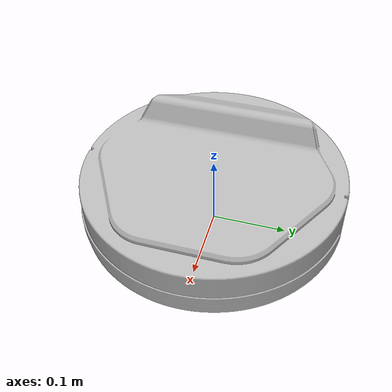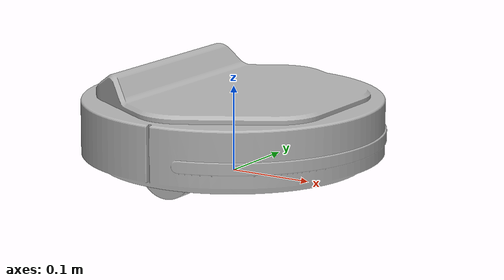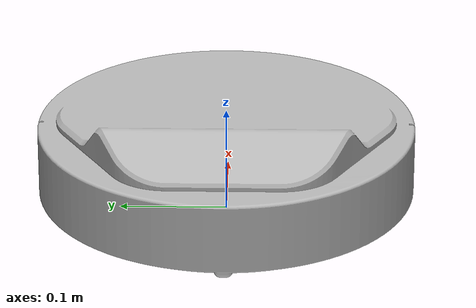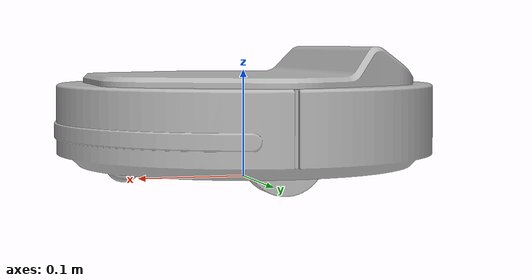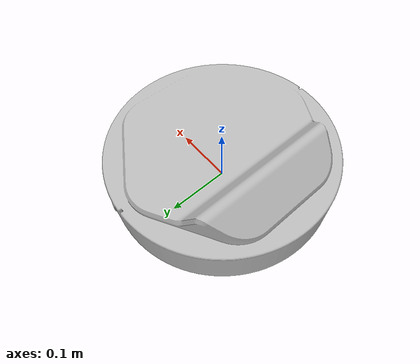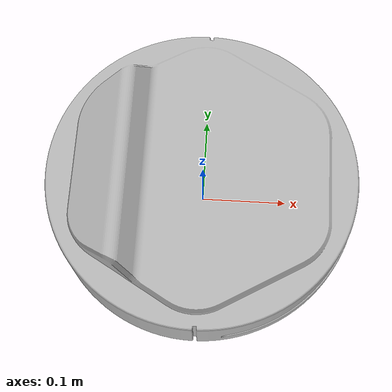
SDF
<?xml version="1.0" ?>
<sdf version="1.5">
  <model name="kobuki">

    <link name="base">
      <inertial>
        <pose>0.001453 -0.000453 0.03 0 0 0</pose>
        <inertia>
          <ixx>0.019995</ixx>
          <ixy>0.0</ixy>
          <ixz>0.0</ixz>
          <iyy>0.019995</iyy>
          <iyz>0.0</iyz>
          <izz>0.03675</izz>
        </inertia>
        <mass>2.4000</mass>
      </inertial>
      <collision name="base_collision">
        <pose>0 0 0.047800 0 0 0</pose>
        <geometry>
          <cylinder>
            <radius>0.016495</radius>
            <length>0.061163</length>
          </cylinder>
        </geometry>
      </collision>
      <visual name="base_visual">
        <pose>0 0 0.06 0 0 0</pose>
        <geometry>
          <mesh>
            <uri>model://kobuki/meshes/main_body.dae</uri>
          </mesh>
        </geometry>
      </visual>

      <collision name="front_wheel_collision">
        <pose>0.115 0 0.017000 0 1.570700 1.570700</pose>
        <geometry>
          <cylinder>
            <radius>0.017</radius>
            <length>0.0176</length>
          </cylinder>
        </geometry>
        <surface>
          <friction>
            <ode>
              <mu>0</mu>
              <mu2>0</mu2>
              <fdir1>0 0 0</fdir1>
              <slip1>0</slip1>
              <slip2>0</slip2>
            </ode>
          </friction>
        </surface>
      </collision>

      <collision name="rear_wheel_collision">
        <pose>-0.138 0 0.017 0 1.5707 1.5707</pose>
        <geometry>
          <cylinder>
            <radius>0.017</radius>
            <length>0.0176</length>
          </cylinder>
        </geometry>
        <surface>
          <friction>
            <ode>
              <mu>0</mu>
              <mu2>0</mu2>
              <fdir1>0 0 0</fdir1>
              <slip1>0</slip1>
              <slip2>0</slip2>
            </ode>
          </friction>
        </surface>
      </collision>

      <sensor name="left_cliff_sensor" type="ray">
        <pose>0.070000 0.140000 0.027000 0 1.570790 0</pose>
        <ray>
          <scan>
            <horizontal>
              <samples>1</samples>
              <resolution>1.000000</resolution>
              <min_angle>0</min_angle>
              <max_angle>0</max_angle>
            </horizontal>
          </scan>
          <range>
            <min>0.010000</min>
            <max>0.040000</max>
            <resolution>0.100000</resolution>
          </range>
        </ray>
      </sensor>
      <sensor name="leftfront_cliff_sensor" type="ray">
        <pose>0.150000 0.040000 0.027000 0 1.570790 0</pose>
        <ray>
          <scan>
            <horizontal>
              <samples>1</samples>
              <resolution>1.000000</resolution>
              <min_angle>0</min_angle>
              <max_angle>0</max_angle>
            </horizontal>
          </scan>
          <range>
            <min>0.010000</min>
            <max>0.040000</max>
            <resolution>0.100000</resolution>
          </range>
        </ray>
      </sensor>
      <sensor name="right_cliff_sensor" type="ray">
        <pose>0.070000 -0.140000 0.027000 0 1.570790 0</pose>
        <ray>
          <scan>
            <horizontal>
              <samples>1</samples>
              <resolution>1.000000</resolution>
              <min_angle>0</min_angle>
              <max_angle>0</max_angle>
            </horizontal>
          </scan>
          <range>
            <min>0.010000</min>
            <max>0.040000</max>
            <resolution>0.100000</resolution>
          </range>
        </ray>
      </sensor>
      <sensor name="rightfront_cliff_sensor" type="ray">
        <pose>0.150000 -0.040000 0.027000 0 1.570790 0</pose>
        <ray>
          <scan>
            <horizontal>
              <samples>1</samples>
              <resolution>1.000000</resolution>
              <min_angle>0</min_angle>
              <max_angle>0</max_angle>
            </horizontal>
          </scan>
          <range>
            <min>0.010000</min>
            <max>0.040000</max>
            <resolution>0.100000</resolution>
          </range>
        </ray>
      </sensor>
      <sensor name="wall_sensor" type="ray">
        <pose>0.090000 -0.120000 0.059000 0 0 -1.000000</pose>
        <ray>
          <scan>
            <horizontal>
              <samples>1</samples>
              <resolution>1.000000</resolution>
              <min_angle>0</min_angle>
              <max_angle>0</max_angle>
            </horizontal>
          </scan>
          <range>
            <min>0.016000</min>
            <max>0.040000</max>
            <resolution>0.100000</resolution>
          </range>
        </ray>
      </sensor>
    </link>

    <link name="left_wheel">
      <pose>0 0.130000 0.032000 0 0 0</pose>
      <inertial>
        <inertia>
          <ixx>0.001000</ixx>
          <ixy>0</ixy>
          <ixz>0</ixz>
          <iyy>0.001000</iyy>
          <iyz>0</iyz>
          <izz>0.001000</izz>
        </inertia>
        <mass>0.010000</mass>
      </inertial>
      <collision name="left_wheel_collision">
        <pose>0 0 0 0 1.570700 1.570700</pose>
        <geometry>
          <cylinder>
            <radius>0.033000</radius>
            <length>0.023000</length>
          </cylinder>
        </geometry>
        <surface>
          <friction>
            <ode>
              <mu>1.0</mu>
              <mu2>1.0</mu2>
              <fdir1>0 0 0</fdir1>
              <slip1>0</slip1>
              <slip2>0</slip2>
            </ode>
          </friction>
        </surface>
      </collision>
      <visual name="visual">
        <pose>0 0 0 0 1.570700 1.570700</pose>
        <geometry>
          <mesh>
            <uri>model://kobuki/meshes/wheel.dae</uri>
          </mesh>
        </geometry>
      </visual>
    </link>

    <link name="right_wheel">
      <pose>0 -0.130000 0.032000 0 0 0</pose>
      <inertial>
        <inertia>
          <ixx>0.001000</ixx>
          <ixy>0</ixy>
          <ixz>0</ixz>
          <iyy>0.001000</iyy>
          <iyz>0</iyz>
          <izz>0.001000</izz>
        </inertia>
        <mass>0.010000</mass>
      </inertial>
      <collision name="right_wheel_collision">
        <pose>0 0 0 0 1.570700 1.570700</pose>
        <geometry>
          <cylinder>
            <radius>0.033000</radius>
            <length>0.023000</length>
          </cylinder>
        </geometry>
        <surface>
          <friction>
            <ode>
              <mu>15</mu>
              <mu2>40</mu2>
              <fdir1>0 0 0</fdir1>
              <slip1>0</slip1>
              <slip2>0</slip2>
            </ode>
          </friction>
        </surface>
      </collision>
      <visual name="visual">
        <pose>0 0 0 0 1.570700 1.570700</pose>
        <geometry>
          <mesh>
            <uri>model://kobuki/meshes/wheel.dae</uri>
          </mesh>
        </geometry>
      </visual>
    </link>

    <joint name="left_wheel_joint" type="revolute">
      <parent>base</parent>
      <child>left_wheel</child>
      <axis>
        <xyz>0 1 0</xyz>
        <use_parent_model_frame>true</use_parent_model_frame>
      </axis>
    </joint>

    <joint name="right_wheel_joint" type="revolute">
      <parent>base</parent>
      <child>right_wheel</child>
      <axis>
        <xyz>0 1 0</xyz>
        <use_parent_model_frame>true</use_parent_model_frame>
      </axis>
    </joint>

    <plugin name="diff_drive" filename="libgazebo_ros_diff_drive.so">
    <update_rate>20</update_rate>

    <!-- wheels -->
    <left_joint>left_wheel_joint</left_joint>
    <right_joint>right_wheel_joint</right_joint>

    <wheel_separation>0.23</wheel_separation>
    <wheel_diameter>0.07</wheel_diameter>
    <max_wheel_torque>20</max_wheel_torque>
    <max_wheel_acceleration>1.0</max_wheel_acceleration>

    <!-- Receive velocity commands on this ROS topic -->
    <command_topic>cmd_vel</command_topic>
    <publish_odom>false</publish_odom>
    <publish_odom_tf>true</publish_odom_tf>
    <publish_wheel_tf>false</publish_wheel_tf>

    <odometry_topic>odom</odometry_topic>
    <odometry_frame>odom</odometry_frame>
    <robot_base_frame>base_footprint</robot_base_frame>

    <!-- Odometry source, 0 for ENCODER, 1 for WORLD, defaults to WORLD -->
    <odometry_source>0</odometry_source>

    <!-- Change the ROS topic we will publish the odometry data to -->
  </plugin>

  </model>
</sdf>
